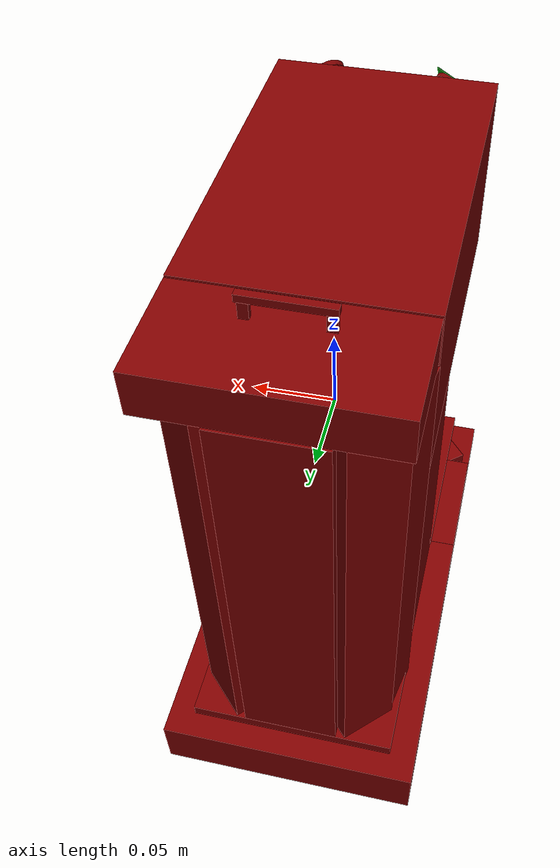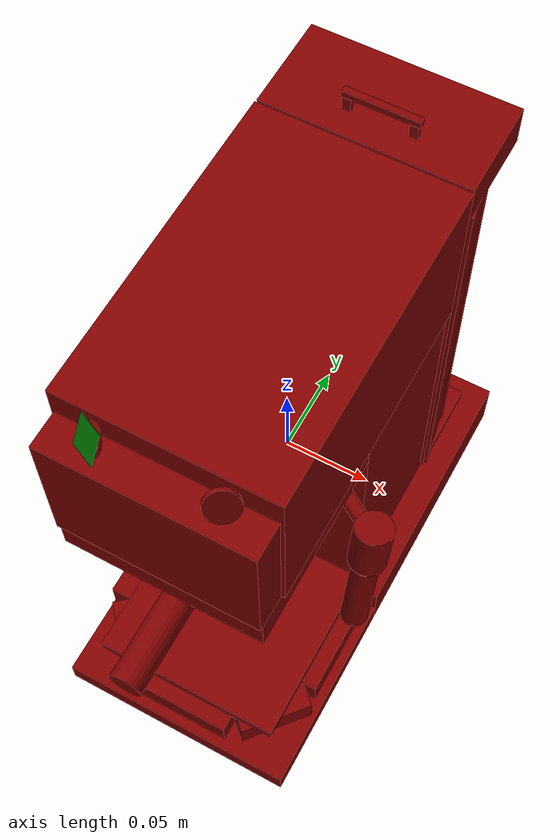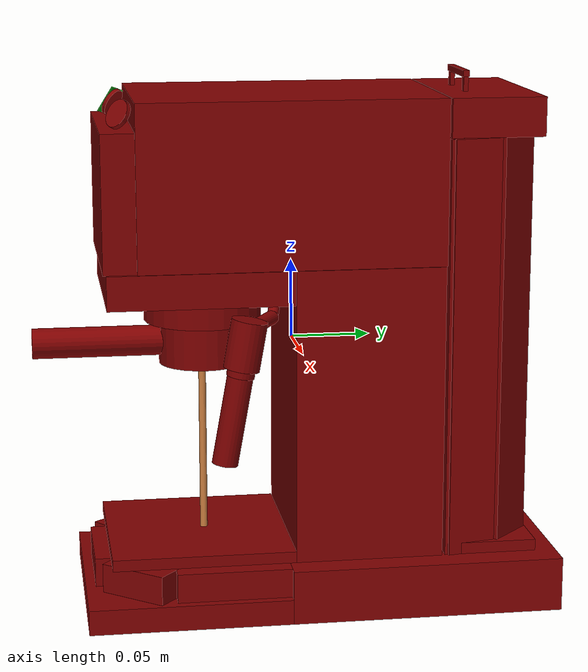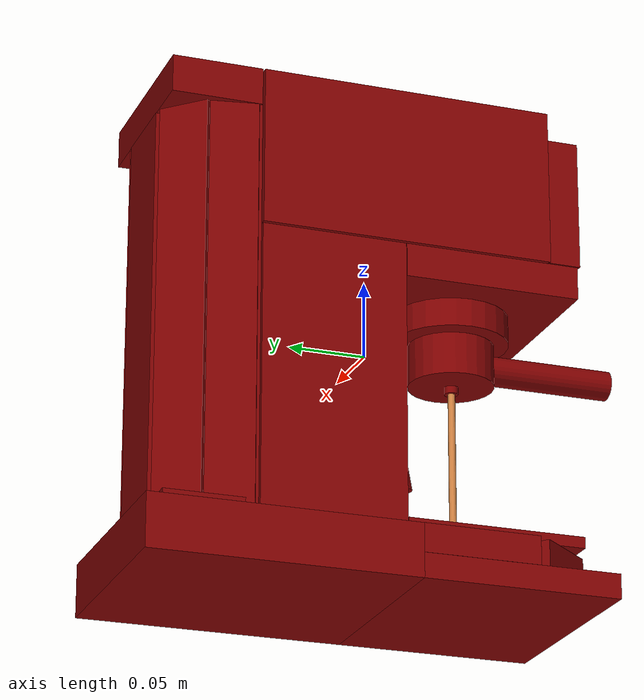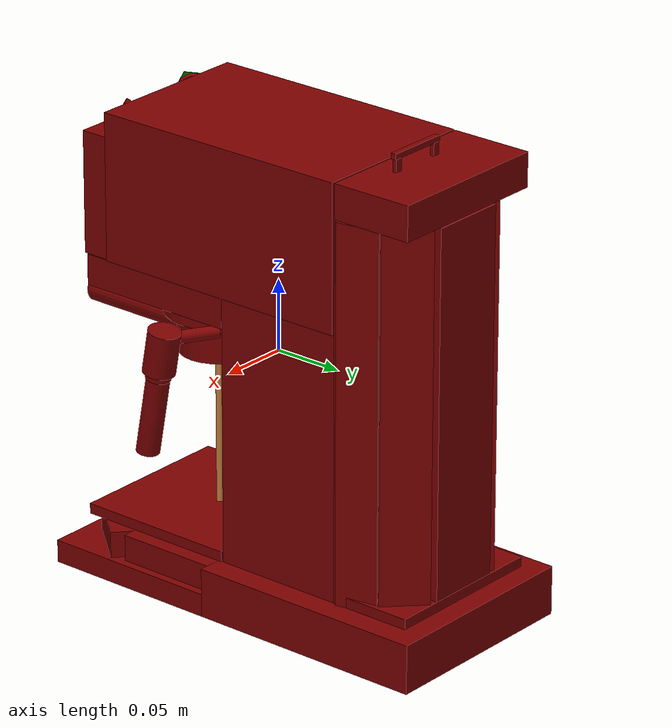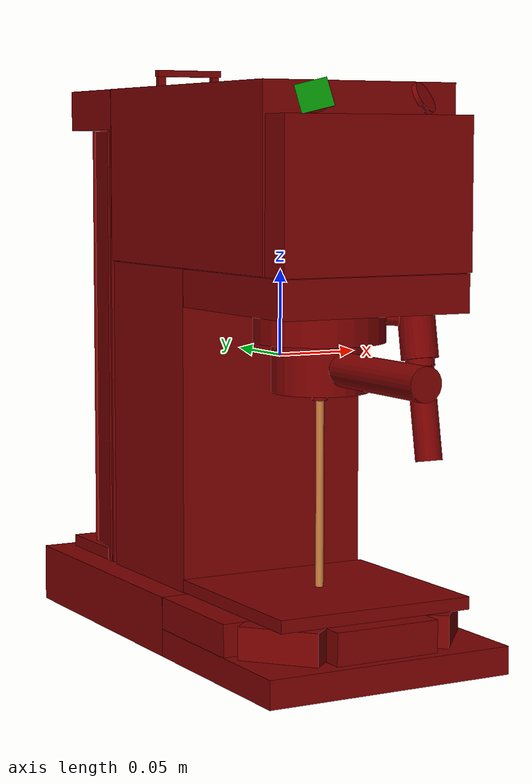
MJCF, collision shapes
<?xml version='1.0' encoding='UTF-8'?>
<mujoco model="model">
  <compiler angle="radian"/>
  <asset>
    <mesh file="visuals/Body001.obj" name="Body001_vis"/>
    <mesh file="visuals/Button001.obj" name="Button001_vis"/>
    <mesh file="visuals/Button002.obj" name="Button002_vis"/>
    <mesh file="visuals/Container001_Clear.obj" name="Container001_Clear_vis"/>
    <mesh file="visuals/Lever001.obj" name="Lever001_vis"/>
    <mesh file="visuals/Lever002.obj" name="Lever002_vis"/>
    <mesh file="visuals/Lid001.obj" name="Lid001_vis"/>
    <mesh file="visuals/Lid002.obj" name="Lid002_vis"/>
    <texture file="visuals/T-BC001.png" name="Body001_material" type="2d"/>
    <material name="Body001_material" rgba="1 1 1 1.0" texture="Body001_material" shininess="0.4472135901451111" specular="0.3103448502657381"/>
    <texture file="visuals/T-BC001.png" name="Button001_material" type="2d"/>
    <material name="Button001_material" rgba="1 1 1 1.0" texture="Button001_material" shininess="0.4472135901451111" specular="0.3103448502657381"/>
    <texture file="visuals/T-BC001.png" name="Button002_material" type="2d"/>
    <material name="Button002_material" rgba="1 1 1 1.0" texture="Button002_material" shininess="0.4472135901451111" specular="0.3103448502657381"/>
    <material name="Container001_Clear_material" rgba="0.5 0.5 0.5 0.20000000298023224" shininess="0.4472135901451111" specular="0.3103448502657381"/>
    <texture file="visuals/T-BC001.png" name="Lid002_material" type="2d"/>
    <material name="Lid002_material" rgba="1 1 1 1.0" texture="Lid002_material" shininess="0.4472135901451111" specular="0.3103448502657381"/>
    <texture file="visuals/T-BC001.png" name="Lever001_material" type="2d"/>
    <material name="Lever001_material" rgba="1 1 1 1.0" texture="Lever001_material" shininess="0.4472135901451111" specular="0.3103448502657381"/>
    <texture file="visuals/T-BC001.png" name="Lever002_material" type="2d"/>
    <material name="Lever002_material" rgba="1 1 1 1.0" texture="Lever002_material" shininess="0.4472135901451111" specular="0.3103448502657381"/>
    <texture file="visuals/T-BC001.png" name="Lid001_material" type="2d"/>
    <material name="Lid001_material" rgba="1 1 1 1.0" texture="Lid001_material" shininess="0.4472135901451111" specular="0.3103448502657381"/>
  </asset>
  <default>
    <default class="visual">
      <geom conaffinity="0" contype="0" group="1" type="mesh"/>
    </default>
    <default class="collision">
      <geom group="0" rgba="0.5 0 0 0.5"/>
    </default>
    <default class="spawn">
      <geom group="0" rgba="1 1 1 0.5" contype="0" conaffinity="0"/>
      <site group="0" rgba="1 1 1 0.5"/>
    </default>
    <default class="region">
      <geom group="1" conaffinity="0" contype="0" rgba="0 1 0 0"/>
    </default>
  </default>
  <worldbody>
    <body>
      <body name="object">
        <geom class="collision" type="box" pos="-0.041192 -0.109757 0.147662" size="0.00892726331949234 0.00892726518213749 0.00016084407980088145" quat="0.846511721611023 0.4653227925300598 -0.21786101162433624 -0.1393885612487793" name="start_button" rgba="0.0 0.5 0 0.5"/>
        <site rgba="0 0 0 0" size="0.009999999776482582 0.009999999776482582" pos="-0.005491 -0.057148 -0.129954" name="receptacle_place_site"/>
        <site type="cylinder" rgba="0.8 0.5 0.25 1" size="0.0023485838901251554 0.0685235857963562" pos="-0.006141 -0.056817 -0.087693" name="coffee_liquid"/>
        <geom mesh="Body001_vis" type="mesh" solimp="0.998 0.998 0.001" solref="0.001 1" density="100" friction="0.95 0.3 0.1" class="visual" material="Body001_material"/>
        <geom class="collision" type="box" pos="-0.006483 -0.071883 -0.161042" size="0.07531660795211792 0.0637577474117279 0.007983927614986897" quat="1.0 0.0 0.0 0.0"/>
        <geom class="collision" type="box" pos="-0.006483 0.077980 -0.151829" size="0.07531660795211792 0.08617395907640457 0.01719781756401062" quat="1.0 0.0 0.0 0.0"/>
        <geom class="collision" type="box" pos="-0.070635 -0.045871 -0.143760" size="0.011048798449337482 0.03774593397974968 0.00920934695750475" quat="1.0 0.0 0.0 0.0"/>
        <geom class="collision" type="box" pos="0.054750 -0.044194 -0.144167" size="0.008273176848888397 0.03606918454170227 0.009615909308195114" quat="1.0 0.0 0.0 0.0"/>
        <geom class="collision" type="box" pos="-0.005766 -0.119277 -0.144706" size="0.031720150262117386 0.01010341290384531 0.01008792407810688" quat="1.0 0.0 0.0 0.0"/>
        <geom class="collision" type="box" pos="-0.007125 0.042711 -0.041062" size="0.058642711490392685 0.04680358245968819 0.0934905856847763" quat="1.0 0.0 0.0 0.0"/>
        <geom class="collision" type="box" pos="-0.006728 -0.005664 0.104636" size="0.06048281863331795 0.09517877548933029 0.051534704864025116" quat="1.0 0.0 0.0 0.0"/>
        <geom class="collision" type="box" pos="-0.007125 -0.062015 0.041608" size="0.058642711490392685 0.0575593076646328 0.010820487514138222" quat="1.0 0.0 0.0 0.0"/>
        <geom class="collision" type="box" pos="-0.007125 -0.110659 0.095565" size="0.058642711490392685 0.010886264964938164 0.04257867485284805" quat="1.0 0.0 0.0 0.0"/>
        <geom class="collision" type="cylinder" pos="-0.006193 -0.056095 0.022115" size="0.03744764253497124 0.009673897176980972" quat="1.0 0.0 0.0 0.0"/>
        <geom class="collision" type="box" pos="0.043019 -0.100813 -0.144167" size="0.0106677720323205 0.022961612790822983 0.009615909308195114" quat="0.9385688304901123 0.0 -0.0 -0.34509211778640747"/>
        <geom class="collision" type="box" pos="-0.054106 -0.101673 -0.144167" size="0.0106677720323205 0.022961612790822983 0.009615909308195114" quat="0.9385688304901123 0.0 0.0 0.3450920879840851"/>
        <body name="Button001">
          <joint axis="0.3790660500526428 0.7952281832695007 -0.4732029438018799" pos="-0.039551 -0.107766 0.146459" limited="true" name="Button001_joint" range="0.0 0.003" type="slide" damping="1" frictionloss="1" armature=".01" stiffness="0.05" springref="-0.1"/>
          <geom mesh="Button001_vis" type="mesh" solimp="0.998 0.998 0.001" solref="0.001 1" density="100" friction="0.95 0.3 0.1" class="visual" material="Button001_material"/>
          <geom class="collision" type="cylinder" pos="-0.040452 -0.108677 0.146961" size="0.00892726331949234 0.0011526010930538177" quat="0.846511721611023 0.4653227925300598 -0.21786101162433624 -0.1393885612487793"/>
        </body>
        <body name="Button002">
          <joint axis="-0.46215391159057617 0.797650158405304 -0.3875150978565216" pos="0.026513 -0.107766 0.146459" limited="true" name="Button002_joint" range="0.0 0.003" type="slide" damping="1" frictionloss="1" armature=".01" stiffness="0.05" springref="-0.1"/>
          <geom mesh="Button002_vis" type="mesh" solimp="0.998 0.998 0.001" solref="0.001 1" density="100" friction="0.95 0.3 0.1" class="visual" material="Button002_material"/>
          <geom class="collision" type="cylinder" pos="0.027381 -0.108910 0.147025" size="0.009151086211204529 0.0014498068485409021" quat="0.8465116620063782 0.4653228521347046 0.2178611308336258 0.1393885463476181"/>
        </body>
        <body name="Container001_Clear">
          <joint axis="0.0 0.0 1.0" pos="-0.006519 0.119626 -0.001281" limited="true" name="Container001_Clear_joint" range="0.0 0.1" type="slide" damping="1" frictionloss="1" armature=".01" stiffness="0.05"/>
          <geom mesh="Container001_Clear_vis" type="mesh" solimp="0.998 0.998 0.001" solref="0.001 1" density="100" friction="0.95 0.3 0.1" class="visual" material="Container001_Clear_material"/>
          <geom class="collision" type="box" pos="-0.006742 0.091909 -0.001197" size="0.060055769979953766 0.0010053712176159024 0.13239671289920807" quat="1.0 0.0 0.0 0.0"/>
          <geom class="collision" type="box" pos="-0.006742 0.121429 -0.130006" size="0.06005577743053436 0.028619131073355675 0.003588327905163169" quat="1.0 0.0 0.0 0.0"/>
          <geom class="collision" type="box" pos="-0.006268 0.146465 0.002519" size="0.027414213865995407 0.0035828114487230778 0.12871545553207397" quat="1.0 0.0 0.0 0.0"/>
          <geom class="collision" type="box" pos="0.035341 0.134540 -0.001180" size="0.016749773174524307 0.0040876781567931175 0.13241435587406158" quat="0.9247809052467346 0.0 -0.0 -0.38050004839897156"/>
          <geom class="collision" type="box" pos="0.049795 0.108102 -0.001180" size="0.015352112241089344 0.0023015213664621115 0.13241435587406158" quat="0.7677953243255615 0.0 -0.0 -0.6406952142715454"/>
          <geom class="collision" type="box" pos="-0.062780 0.108102 -0.001180" size="0.015352112241089344 0.0023015213664621115 0.13241435587406158" quat="0.7677953243255615 0.0 0.0 0.6406952142715454"/>
          <geom class="collision" type="box" pos="-0.048327 0.134540 -0.001180" size="0.016749773174524307 0.0040876781567931175 0.13241435587406158" quat="0.9247809052467346 0.0 0.0 0.38050004839897156"/>
          <body name="Lid002">
            <joint axis="0.0 0.0 1.0" pos="-0.006519 0.119587 0.150311" limited="true" name="Lid002_joint" range="0.0 0.05" type="slide" damping="1" frictionloss="1" armature=".01" stiffness="0.05"/>
            <geom mesh="Lid002_vis" type="mesh" solimp="0.998 0.998 0.001" solref="0.001 1" density="100" friction="0.95 0.3 0.1" class="visual" material="Lid002_material"/>
            <geom class="collision" type="box" pos="-0.006742 0.120121 0.143977" size="0.06005576252937317 0.029217014089226723 0.012135030701756477" quat="1.0 0.0 0.0 0.0"/>
            <geom class="collision" type="box" pos="-0.005552 0.107708 0.167056" size="0.021868998184800148 0.0020007893908768892 0.0019695404917001724" quat="1.0 0.0 0.0 0.0"/>
            <geom class="collision" type="box" pos="0.012717 0.107748 0.160600" size="0.0024626492522656918 0.0014875272754579782 0.004465391393750906" quat="1.0 0.0 0.0 0.0"/>
            <geom class="collision" type="box" pos="-0.024508 0.107748 0.160600" size="0.0024626492522656918 0.0014875272754579782 0.004465391393750906" quat="1.0 0.0 0.0 0.0"/>
          </body>
        </body>
        <body name="Lever001">
          <joint axis="0.0 0.0 -1.0" pos="-0.006180 -0.056682 0.000263" limited="true" name="Lever001_joint" range="0.0 0.7853981633974483" type="hinge" damping="1" frictionloss="1" armature=".01" stiffness="0.01" springref="-0.1"/>
          <geom mesh="Lever001_vis" type="mesh" solimp="0.998 0.998 0.001" solref="0.001 1" density="100" friction="0.95 0.3 0.1" class="visual" material="Lever001_material"/>
          <geom class="collision" type="cylinder" pos="-0.005985 -0.056552 -0.001957" size="0.027652401477098465 0.01362256333231926" quat="1.0 0.0 0.0 0.0"/>
          <geom class="collision" type="cylinder" pos="-0.006096 -0.056688 -0.017941" size="0.004396958276629448 0.0023990387562662363" quat="1.0 0.0 0.0 0.0"/>
          <geom class="collision" type="cylinder" pos="-0.005986 -0.123088 -0.000780" size="0.009592370130121708 0.041259489953517914" quat="0.7071067094802856 0.7071068286895752 0.0 0.0"/>
        </body>
        <body name="Lever002">
          <joint axis="0.0 0.0 -1.0" pos="0.034231 -0.014878 0.032928" limited="true" name="Lever002_joint" range="-0.5235987755982988 0.5235987755982988" type="hinge" damping="1" frictionloss="1" armature=".01" stiffness="0.01" springref="-0.1"/>
          <geom mesh="Lever002_vis" type="mesh" solimp="0.998 0.998 0.001" solref="0.001 1" density="100" friction="0.95 0.3 0.1" class="visual" material="Lever002_material"/>
          <geom class="collision" type="cylinder" pos="0.071245 -0.046267 -0.034198" size="0.008019386790692806 0.027639660984277725" quat="0.9960389137268066 -0.08891831338405609 1.9743831765962858e-17 -4.3224576227972346e-24"/>
          <geom class="collision" type="cylinder" pos="0.071245 -0.040933 -0.004562" size="0.008619946427643299 0.0024311484303325415" quat="0.9960389137268066 -0.08891831338405609 1.9743831765962858e-17 -4.3224576227972346e-24"/>
          <geom class="collision" type="cylinder" pos="0.071245 -0.038048 0.012589" size="0.011144055984914303 0.01516952645033598" quat="0.9960389137268066 -0.08891831338405609 1.9743831765962858e-17 -4.3224576227972346e-24"/>
          <geom class="collision" type="cylinder" pos="0.050875 -0.024616 0.021438" size="0.004379558842629194 0.01350738201290369" quat="0.7029600143432617 0.36455032229423523 0.6106710433959961 -0.005580933764576912"/>
          <geom class="collision" type="cylinder" pos="0.036798 -0.016434 0.024701" size="0.00349732069298625 0.004593165125697851" quat="0.28198710083961487 0.2681159973144531 0.9206628203392029 -0.03125828877091408"/>
        </body>
        <body name="Lid001">
          <joint axis="0.0 0.0 1.0" pos="-0.006519 -0.061479 -0.130415" limited="true" name="Lid001_joint" range="0.0 0.03" type="slide" damping="1" frictionloss="1" armature=".01" stiffness="0.05" springref="-10"/>
          <geom mesh="Lid001_vis" type="mesh" solimp="0.998 0.998 0.001" solref="0.001 1" density="100" friction="0.95 0.3 0.1" class="visual" material="Lid001_material"/>
          <geom class="collision" type="box" pos="-0.006483 -0.062036 -0.130316" size="0.0598076656460762 0.05761132761836052 0.003606165526434779" quat="1.0 0.0 0.0 0.0"/>
        </body>
        <geom class="region" name="reg_main" type="box" pos="-0.006446499999999994 0.014093000000000008 -0.006419999999999995" size="0.0750725 0.15004299999999998 0.16249999999999998"/>
      </body>
    </body>
  </worldbody>
  <actuator>
    <motor name="Button001_joint_actuator" joint="Button001_joint" gear="0.5"/>
    <motor name="Button002_joint_actuator" joint="Button002_joint" gear="0.5"/>
    <motor name="Container001_Clear_joint_actuator" joint="Container001_Clear_joint" gear="10"/>
    <motor name="Lever001_joint_actuator" joint="Lever001_joint" gear="10"/>
    <motor name="Lever002_joint_actuator" joint="Lever002_joint" gear="10"/>
    <motor name="Lid001_joint_actuator" joint="Lid001_joint" gear="10"/>
    <motor name="Lid002_joint_actuator" joint="Lid002_joint" gear="10"/>
  </actuator>
</mujoco>
